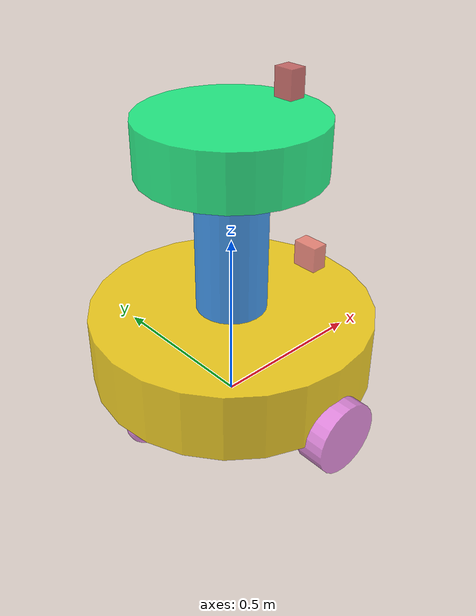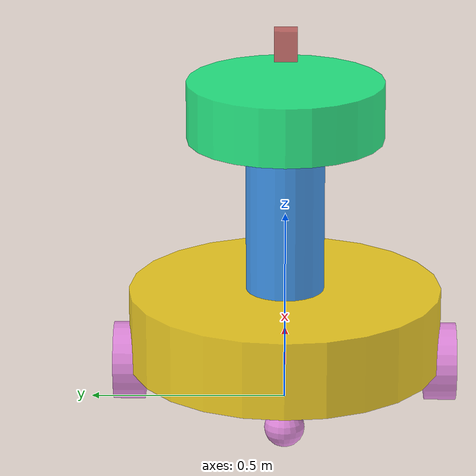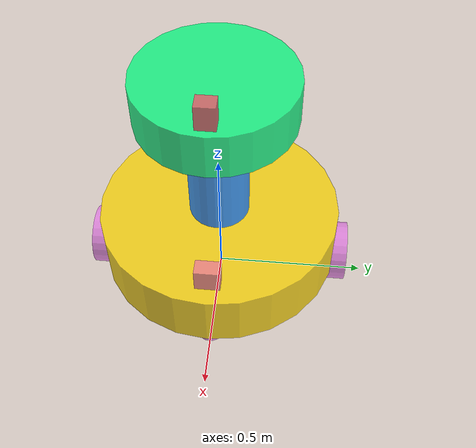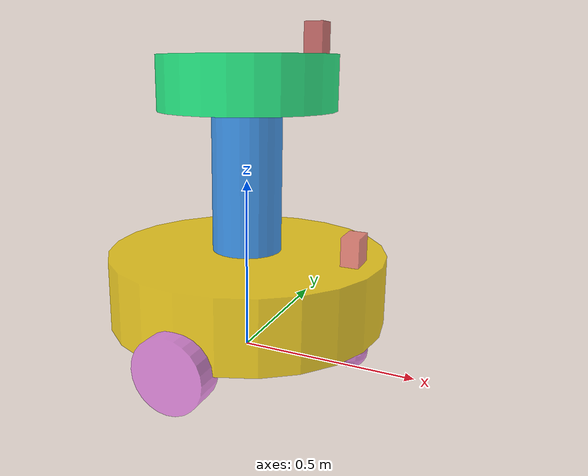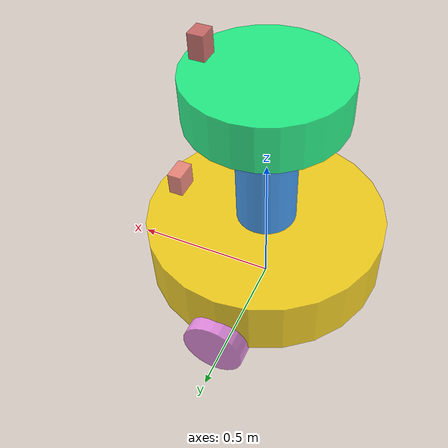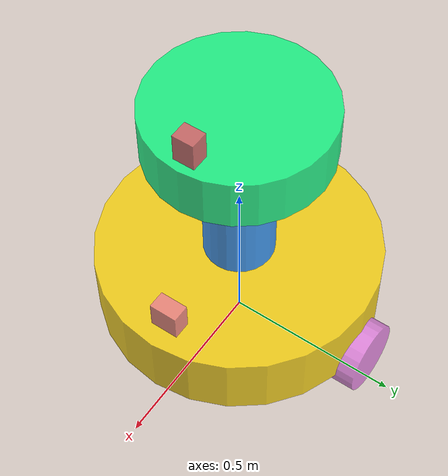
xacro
<robot name="myrobot_xacro" xmlns:xacro="http://www.ros.org/wiki/xacro">

    <xacro:property name="Pi" value="3.1415926535898" />

    <xacro:property name="root_radius" value="0.0001" />
    <xacro:property name="root_height" value="0.0001" />

    <xacro:property name="base_radius" value="0.4" />
    <xacro:property name="base_height" value="0.2" />

    <xacro:property name="move_wheel_radius" value="0.1" />
    <xacro:property name="move_wheel_height" value="0.08" />

    <xacro:property name="support_wheel_radius" value="0.05" />

    <xacro:property name="support_radius" value="0.1" />
    <xacro:property name="support_height" value="0.4" />

    <xacro:property name="platform_radius" value="0.25" />
    <xacro:property name="platform_height" value="0.15" />

    <xacro:property name="laser_length" value="0.05" />
    <xacro:property name="laser_width" value="0.06" />
    <xacro:property name="laser_height" value="0.08" />

    <xacro:property name="depth_length" value="0.05" />
    <xacro:property name="depth_width" value="0.08" />
    <xacro:property name="depth_height" value="0.08" />

    <link name="root_link">
        <visual>
            <geometry>
                <cylinder radius="${root_radius}" length="${root_height}" />
            </geometry>
            <origin xyz="0 0 0" rpy="0 0 0" />
            <material name="Snow">
                <color rgba="1 0.98 0.98 0.8" />
            </material>
        </visual>
    </link>

    <link name="base_link">
        <visual>
            <geometry>
                <cylinder radius="${base_radius}" length="${base_height}" />
            </geometry>
            <origin xyz="0 0 0" rpy="0 0 0" />
            <material name="Gold">
                <color rgba="1 0.843 0 0.8" />
            </material>
        </visual>
    </link>

    <link name="front_support_wheel_link">
        <visual>
            <geometry>
                <sphere radius="${support_wheel_radius}" />
            </geometry>
            <origin xyz="0 0 0" rpy="0 0 0" />
            <material name="Voilet">
                <color rgba="0.933 0.51 0.933 0.8" />
            </material>
        </visual>
    </link>

    <link name="back_support_wheel_link">
        <visual>
            <geometry>
                <sphere radius="${support_wheel_radius}" />
            </geometry>
            <origin xyz="0 0 0" rpy="0 0 0" />
            <material name="Voilet">
                <color rgba="0.933 0.51 0.933 0.8" />
            </material>
        </visual>
    </link>

    <link name="left_wheel_link">
        <visual>
            <geometry>
                <cylinder radius="${move_wheel_radius}" length="${move_wheel_height}" />
            </geometry>
            <origin xyz="0 0 0" rpy="${Pi / 2} 0 0" />
            <material name="Voilet">
                <color rgba="0.933 0.51 0.933 0.8" />
            </material>
        </visual>
    </link>

    <link name="right_wheel_link">
        <visual>
            <geometry>
                <cylinder radius="${move_wheel_radius}" length="${move_wheel_height}" />
            </geometry>
            <origin xyz="0 0 0" rpy="${Pi / 2} 0 0" />
            <material name="Voilet">
                <color rgba="0.933 0.51 0.933 0.8" />
            </material>
        </visual>
    </link>

    <link name="support_link">
        <visual>
            <geometry>
                <cylinder radius="${support_radius}" length="${support_height}" />
            </geometry>
            <origin xyz="0 0 0" rpy="0 0 0" />
            <material name="DodgerBlue">
                <color rgba="0.118 0.565 1 0.8" />
            </material>
        </visual>
    </link>

    <link name="platform_link">
        <visual>
            <geometry>
                <cylinder radius="${platform_radius}" length="${platform_height}" />
            </geometry>
            <origin xyz="0 0 0" rpy="0 0 0" />
            <material name="SpringGreen">
                <color rgba="0 1 0.498 0.8" />
            </material>
        </visual>
    </link>

    <link name="laser_scan_link">
        <visual>
            <geometry>
                <box size="${laser_length} ${laser_width} ${laser_height}" />
            </geometry>
            <origin xyz="0 0 0" rpy="0 0 0" />
            <material name="IndianRed">
                <color rgba="0.804 0.361 0.361 0.8" />
            </material>
        </visual>
    </link>

    <link name="depth_camera_link">
        <visual>
            <geometry>
                <box size="${depth_length} ${depth_width} ${depth_height}" />
            </geometry>
            <origin xyz="0 0 0" rpy="0 0 0" />
            <material name="Salmon">
                <color rgba="0.981 0.502 0.447 0.8" />
            </material>
        </visual>
    </link>

    <joint name="base_link2root_link" type="fixed">
        <parent link="root_link"/>
        <child link="base_link" />
        <origin xyz="0 0 ${base_height / 2 + support_wheel_radius * 2 }" rpy="0 0 0" />
        <axis xyz="0 0 0" />
    </joint>

    <joint name="front_support_wheel_link2base_link" type="continuous">
        <parent link="base_link"/>
        <child link="front_support_wheel_link" />
        <origin xyz="${0.8 * base_radius} 0 ${-(base_height / 2 + support_wheel_radius)}" rpy="0 0 0" />
        <axis xyz="1 1 1" />
    </joint>

    <joint name="back_support_wheel_link2base_link" type="continuous">
        <parent link="base_link"/>
        <child link="back_support_wheel_link" />
        <origin xyz="${-0.8 * base_radius} 0 ${-(base_height / 2 + support_wheel_radius)}" rpy="0 0 0" />
        <axis xyz="1 1 1" />
    </joint>

    <joint name="base_l_wheel_joint" type="continuous">
        <parent link="base_link"/>
        <child link="left_wheel_link" />
        <origin xyz="0 ${base_radius} ${-base_height / 2}" rpy="0 0 0" />
        <axis xyz="0 1 0" />
    </joint>

    <joint name="base_r_wheel_joint" type="continuous">
        <parent link="base_link"/>
        <child link="right_wheel_link" />
        <origin xyz="0 ${-base_radius} ${-base_height / 2}" rpy="0 0 0" />
        <axis xyz="0 1 0" />
    </joint>

    <joint name="support_link2base_link" type="fixed">
        <parent link="base_link"/>
        <child link="support_link" />
        <origin xyz="0 0 ${base_height / 2 + support_height / 2}" rpy="0 0 0" />
        <axis xyz="0 0 0" />
    </joint>

    <joint name="platform_link2support_link" type="fixed">
        <parent link="support_link"/>
        <child link="platform_link" />
        <origin xyz="0 0 ${support_height / 2 + platform_height / 2} " rpy="0 0 0" />
        <axis xyz="0 0 0" />
    </joint>

    <joint name="depth_camera_link2base_link" type="revolute">
        <parent link="base_link"/>
        <child link="depth_camera_link" />
        <origin xyz="${ 0.8 * base_radius} 0 ${base_height / 2 + depth_height / 2}" rpy="0 0 0" />
        <limit lower="-1.57" upper="1.57" effort="10" velocity="3" />
        <axis xyz="0 0 1" />
    </joint>

    <joint name="laser_scan_link2platform_link" type="continuous">
        <parent link="platform_link"/>
        <child link="laser_scan_link" />
        <origin xyz="${0.8 * platform_radius} 0 ${platform_height / 2 + laser_height / 2}" rpy="0 0 0" />
        <axis xyz="0 0 1" />
    </joint>

</robot>
